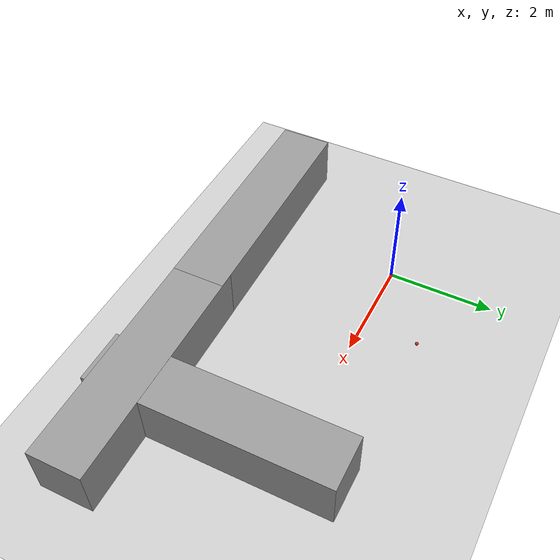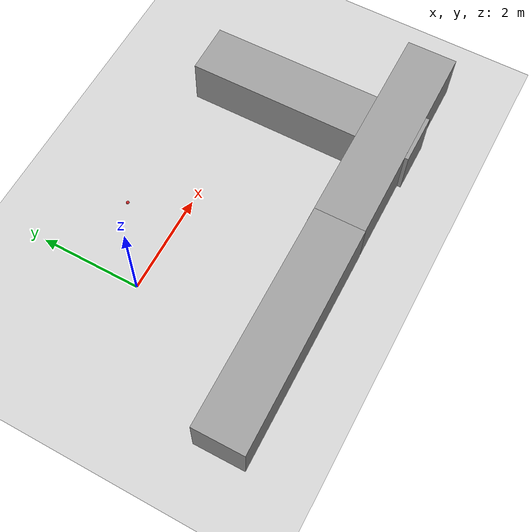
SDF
<sdf version="1.6">
 <world name="default">
  <model name="ground_plane">
   <static>1</static>
   <link name="link">
    <collision name="collision">
     <geometry><plane><normal>0 0 1</normal><size>100 100</size></plane></geometry>
     <surface><friction><ode><mu>100</mu><mu2>50</mu2></ode></friction></surface>
    </collision>
    <visual name="visual">
     <cast_shadows>0</cast_shadows>
     <geometry><plane><normal>0 0 1</normal><size>100 100</size></plane></geometry>
     <material>
      <script><uri>file://media/materials/scripts/gazebo.material</uri><name>Gazebo/Grey</name></script>
     </material>
    </visual>
   </link>
  </model>
  <model name="RoboCup SPL Ball_2">
   <static>0</static>
   <link name="ball">
    <inertial>
     <mass>0.0056</mass>
     <inertia>
      <ixx>2.37e-06</ixx>
      <iyy>2.37e-06</iyy>
      <izz>2.37e-06</izz>
      <ixy>0</ixy>
      <ixz>0</ixz>
      <iyz>0</iyz>
     </inertia>
    </inertial>
    <collision name="collision"><geometry><sphere><radius>0.0325</radius></sphere></geometry></collision>
    <visual name="visual">
     <geometry><sphere><radius>0.0325</radius></sphere></geometry>
     <material>
      <script><uri>file://media/materials/scripts/gazebo.material</uri><name>Gazebo/RedBright</name></script>
     </material>
    </visual>
   </link>
   <pose>1.39792 1.06047 0.0325 0 -0 0</pose>
  </model>
  <model name="unit_box_0_clone_0_0_clone_clone_0_clone_clone">
   <link name="link">
    <inertial>
     <mass>1</mass>
     <inertia>
      <ixx>0.166667</ixx>
      <ixy>0</ixy>
      <ixz>0</ixz>
      <iyy>0.166667</iyy>
      <iyz>0</iyz>
      <izz>0.166667</izz>
     </inertia>
    </inertial>
    <visual name="visual">
     <geometry><box><size>1 4.48154 1</size></box></geometry>
     <material>
      <script><name>Gazebo/Grey</name><uri>file://media/materials/scripts/gazebo.material</uri></script>
      <ambient>0.3 0.3 0.3 1</ambient>
      <diffuse>0.7 0.7 0.7 1</diffuse>
      <specular>0.01 0.01 0.01 1</specular>
      <emissive>0 0 0 1</emissive>
     </material>
    </visual>
    <collision name="collision">
     <geometry><box><size>1 4.48154 1</size></box></geometry>
     <surface>
      <friction>
       <ode><mu>1</mu><mu2>1</mu2><fdir1>0 0 0</fdir1><slip1>0</slip1><slip2>0</slip2></ode>
       <torsional>
        <coefficient>1</coefficient>
        <patch_radius>0</patch_radius>
        <surface_radius>0</surface_radius>
        <use_patch_radius>1</use_patch_radius>
        <ode><slip>0</slip></ode>
       </torsional>
      </friction>
      <bounce><restitution_coefficient>0</restitution_coefficient><threshold>1e+06</threshold></bounce>
      <contact>
       <collide_without_contact>0</collide_without_contact>
       <collide_without_contact_bitmask>1</collide_without_contact_bitmask>
       <collide_bitmask>1</collide_bitmask>
       <ode>
        <soft_cfm>0</soft_cfm>
        <soft_erp>0.2</soft_erp>
        <kp>1e+13</kp>
        <kd>1</kd>
        <max_vel>0.01</max_vel>
        <min_depth>0</min_depth>
       </ode>
       <bullet>
        <split_impulse>1</split_impulse>
        <split_impulse_penetration_threshold>-0.01</split_impulse_penetration_threshold>
        <soft_cfm>0</soft_cfm>
        <soft_erp>0.2</soft_erp>
        <kp>1e+13</kp>
        <kd>1</kd>
       </bullet>
      </contact>
     </surface>
    </collision>
   </link>
   <static>1</static>
   <pose>0.247102 -2.80859 0.49975 3.14159 -0.000573 1.58078</pose>
  </model>
  <model name="unit_box_0_clone_0_0_clone_clone_0_clone_clone_clone">
   <link name="link">
    <inertial>
     <mass>1</mass>
     <inertia>
      <ixx>0.166667</ixx>
      <ixy>0</ixy>
      <ixz>0</ixz>
      <iyy>0.166667</iyy>
      <iyz>0</iyz>
      <izz>0.166667</izz>
     </inertia>
    </inertial>
    <visual name="visual">
     <geometry><box><size>1 4.48154 1</size></box></geometry>
     <material>
      <script><name>Gazebo/Grey</name><uri>file://media/materials/scripts/gazebo.material</uri></script>
      <ambient>0.3 0.3 0.3 1</ambient>
      <diffuse>0.7 0.7 0.7 1</diffuse>
      <specular>0.01 0.01 0.01 1</specular>
      <emissive>0 0 0 1</emissive>
     </material>
    </visual>
    <collision name="collision">
     <geometry><box><size>1 4.48154 1</size></box></geometry>
     <surface>
      <friction>
       <ode><mu>1</mu><mu2>1</mu2><fdir1>0 0 0</fdir1><slip1>0</slip1><slip2>0</slip2></ode>
       <torsional>
        <coefficient>1</coefficient>
        <patch_radius>0</patch_radius>
        <surface_radius>0</surface_radius>
        <use_patch_radius>1</use_patch_radius>
        <ode><slip>0</slip></ode>
       </torsional>
      </friction>
      <bounce><restitution_coefficient>0</restitution_coefficient><threshold>1e+06</threshold></bounce>
      <contact>
       <collide_without_contact>0</collide_without_contact>
       <collide_without_contact_bitmask>1</collide_without_contact_bitmask>
       <collide_bitmask>1</collide_bitmask>
       <ode>
        <soft_cfm>0</soft_cfm>
        <soft_erp>0.2</soft_erp>
        <kp>1e+13</kp>
        <kd>1</kd>
        <max_vel>0.01</max_vel>
        <min_depth>0</min_depth>
       </ode>
       <bullet>
        <split_impulse>1</split_impulse>
        <split_impulse_penetration_threshold>-0.01</split_impulse_penetration_threshold>
        <soft_cfm>0</soft_cfm>
        <soft_erp>0.2</soft_erp>
        <kp>1e+13</kp>
        <kd>1</kd>
       </bullet>
      </contact>
     </surface>
    </collision>
   </link>
   <static>1</static>
   <pose>4.43803 -2.76294 0.49975 3.14159 -0.000573 1.58078</pose>
  </model>
  <model name="unit_box_0_clone_0_0_clone_clone_0_clone_clone_clone_0_clone_clone_0_clone">
   <link name="link">
    <inertial>
     <mass>1</mass>
     <inertia>
      <ixx>0.166667</ixx>
      <ixy>0</ixy>
      <ixz>0</ixz>
      <iyy>0.166667</iyy>
      <iyz>0</iyz>
      <izz>0.166667</izz>
     </inertia>
    </inertial>
    <visual name="visual">
     <geometry><box><size>1 4.48154 1</size></box></geometry>
     <material>
      <script><name>Gazebo/Grey</name><uri>file://media/materials/scripts/gazebo.material</uri></script>
      <ambient>0.3 0.3 0.3 1</ambient>
      <diffuse>0.7 0.7 0.7 1</diffuse>
      <specular>0.01 0.01 0.01 1</specular>
      <emissive>0 0 0 1</emissive>
     </material>
    </visual>
    <collision name="collision">
     <geometry><box><size>1 4.48154 1</size></box></geometry>
     <surface>
      <friction>
       <ode><mu>1</mu><mu2>1</mu2><fdir1>0 0 0</fdir1><slip1>0</slip1><slip2>0</slip2></ode>
       <torsional>
        <coefficient>1</coefficient>
        <patch_radius>0</patch_radius>
        <surface_radius>0</surface_radius>
        <use_patch_radius>1</use_patch_radius>
        <ode><slip>0</slip></ode>
       </torsional>
      </friction>
      <bounce><restitution_coefficient>0</restitution_coefficient><threshold>1e+06</threshold></bounce>
      <contact>
       <collide_without_contact>0</collide_without_contact>
       <collide_without_contact_bitmask>1</collide_without_contact_bitmask>
       <collide_bitmask>1</collide_bitmask>
       <ode>
        <soft_cfm>0</soft_cfm>
        <soft_erp>0.2</soft_erp>
        <kp>1e+13</kp>
        <kd>1</kd>
        <max_vel>0.01</max_vel>
        <min_depth>0</min_depth>
       </ode>
       <bullet>
        <split_impulse>1</split_impulse>
        <split_impulse_penetration_threshold>-0.01</split_impulse_penetration_threshold>
        <soft_cfm>0</soft_cfm>
        <soft_erp>0.2</soft_erp>
        <kp>1e+13</kp>
        <kd>1</kd>
       </bullet>
      </contact>
     </surface>
    </collision>
   </link>
   <static>1</static>
   <pose>4.68691 -1.09395 0.49975 -3.14102 -0 0.006143</pose>
  </model>
 </world>
</sdf>
